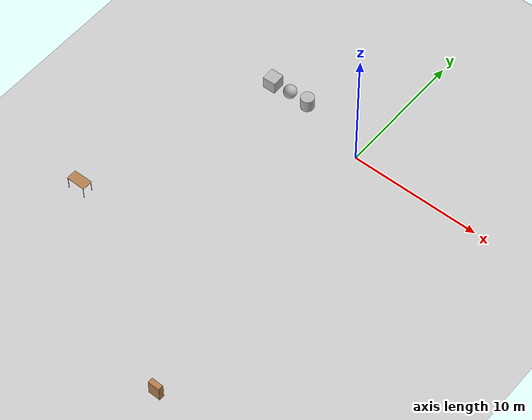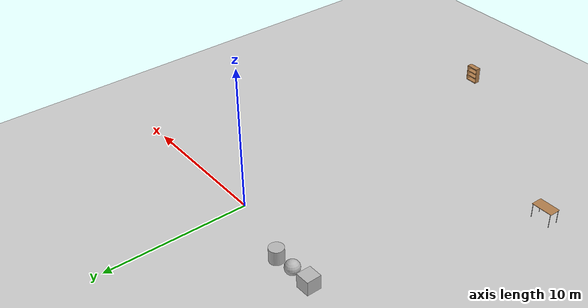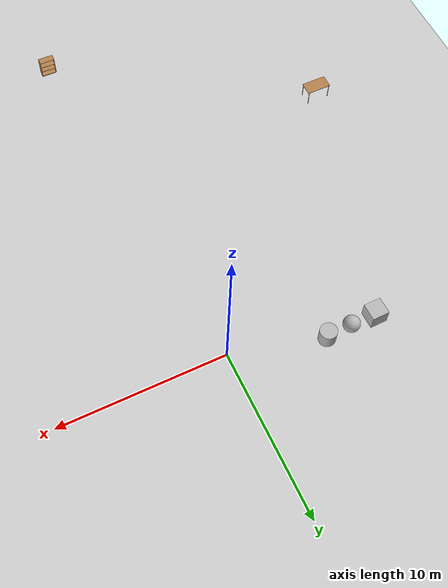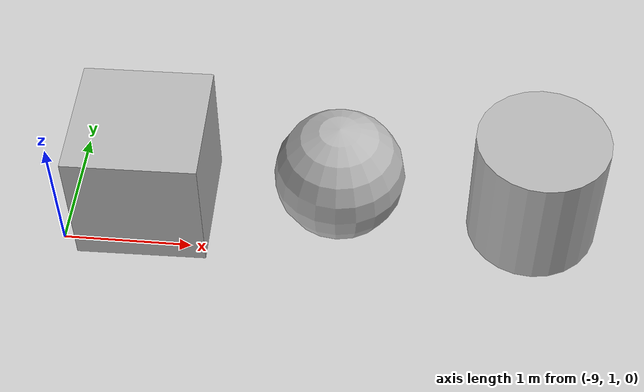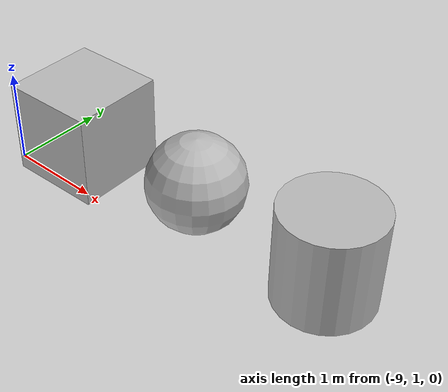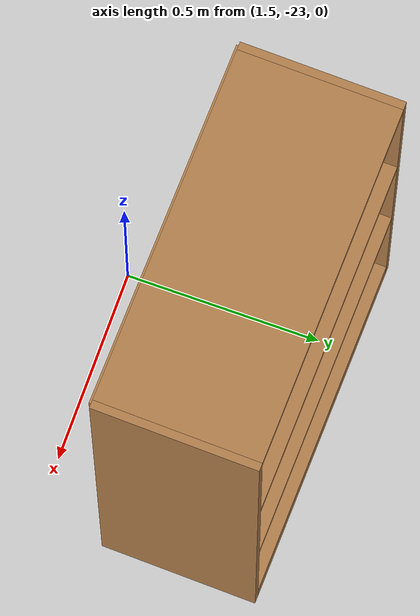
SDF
<sdf version="1.6">
 <world name="default">
  <light name="sun" type="directional">
   <pose>0 0 10 0 -0 0</pose>
   <diffuse>0.8 0.8 0.8 1</diffuse>
   <specular>0.2 0.2 0.2 1</specular>
   <attenuation>
    <range>1000</range>
    <constant>0.9</constant>
    <linear>0.01</linear>
    <quadratic>0.001</quadratic>
   </attenuation>
   <direction>-0.5 0.1 -0.9</direction>
  </light>
  <model name="ground_plane">
   <static>1</static>
   <link name="link">
    <collision name="collision">
     <geometry><plane><normal>0 0 1</normal><size>55 55</size></plane></geometry>
     <surface><friction><ode><mu>100</mu><mu2>50</mu2></ode></friction></surface>
    </collision>
    <visual name="visual">
     <cast_shadows>0</cast_shadows>
     <geometry><plane><normal>0 0 1</normal><size>55 55</size></plane></geometry>
     <material>
      <script>
       <uri>model://ground_plane/materials/scripts/my_ground_plane.material</uri>
       <name>MyGroundPlane/Image</name>
      </script>
     </material>
    </visual>
   </link>
  </model>
  <gravity>0 0 -9.8</gravity>
  <magnetic_field>6e-06 2.3e-05 -4.2e-05</magnetic_field>
  <atmosphere type="adiabatic"/>
  <physics name="default_physics" default="0" type="ode">
   <max_step_size>0.0005</max_step_size>
   <real_time_factor>0.30</real_time_factor>
   <real_time_update_rate>600</real_time_update_rate>
  </physics>
  <scene><ambient>0.4 0.4 0.4 1</ambient><background>0.7 0.7 0.7 1</background><shadows>1</shadows></scene>
  <audio><device>default</device></audio>
  <spherical_coordinates>
   <surface_model>EARTH_WGS84</surface_model>
   <latitude_deg>0</latitude_deg>
   <longitude_deg>0</longitude_deg>
   <elevation>0</elevation>
   <heading_deg>0</heading_deg>
  </spherical_coordinates>
  <model name="textured_shapes">
   <pose>-6.87967 1.40797 0.5 0 0 -1.5513</pose>
   <link name="box">
    <pose>0 -1.5 0 0 -0 0</pose>
    <collision name="collision"><geometry><box><size>1 1 1</size></box></geometry></collision>
    <visual name="visual">
     <geometry><box><size>1 1 1</size></box></geometry>
     <material>
      <script>
       <uri>model://textured_shapes/materials/scripts</uri>
       <uri>model://textured_shapes/materials/textures</uri>
       <name>TexturedShape/Squares</name>
      </script>
     </material>
    </visual>
    <inertial>
     <inertia><ixx>1</ixx><ixy>0</ixy><ixz>0</ixz><iyy>1</iyy><iyz>0</iyz><izz>1</izz></inertia>
     <mass>1</mass>
    </inertial>
   </link>
   <link name="sphere">
    <collision name="collision"><geometry><sphere><radius>0.5</radius></sphere></geometry></collision>
    <visual name="visual">
     <geometry><sphere><radius>0.5</radius></sphere></geometry>
     <material>
      <script>
       <uri>model://textured_shapes/materials/scripts</uri>
       <uri>model://textured_shapes/materials/textures</uri>
       <name>TexturedShape/Squares</name>
      </script>
     </material>
    </visual>
    <inertial>
     <inertia><ixx>1</ixx><ixy>0</ixy><ixz>0</ixz><iyy>1</iyy><iyz>0</iyz><izz>1</izz></inertia>
     <mass>1</mass>
    </inertial>
   </link>
   <link name="cylinder">
    <pose>0 1.5 0 0 -0 0</pose>
    <collision name="collision">
     <geometry><cylinder><radius>0.5</radius><length>1</length></cylinder></geometry>
    </collision>
    <visual name="visual">
     <geometry><cylinder><radius>0.5</radius><length>1</length></cylinder></geometry>
     <material>
      <script>
       <uri>model://textured_shapes/materials/scripts</uri>
       <uri>model://textured_shapes/materials/textures</uri>
       <name>TexturedShape/Squares</name>
      </script>
     </material>
    </visual>
    <inertial>
     <inertia><ixx>1</ixx><ixy>0</ixy><ixz>0</ixz><iyy>1</iyy><iyz>0</iyz><izz>1</izz></inertia>
     <mass>1</mass>
    </inertial>
   </link>
  </model>
  <model name="table">
   <static>1</static>
   <link name="link">
    <collision name="surface">
     <pose>0 0 1 0 -0 0</pose>
     <geometry><box><size>1.5 0.8 0.03</size></box></geometry>
     <surface><friction><ode><mu>0.6</mu><mu2>0.6</mu2></ode></friction></surface>
    </collision>
    <visual name="visual1">
     <pose>0 0 1 0 -0 0</pose>
     <geometry><box><size>1.5 0.8 0.03</size></box></geometry>
     <material>
      <script><uri>file://media/materials/scripts/gazebo.material</uri><name>Gazebo/Wood</name></script>
     </material>
    </visual>
    <collision name="front_left_leg">
     <pose>0.68 0.38 0.5 0 -0 0</pose>
     <geometry><cylinder><radius>0.02</radius><length>1</length></cylinder></geometry>
    </collision>
    <visual name="front_left_leg">
     <pose>0.68 0.38 0.5 0 -0 0</pose>
     <geometry><cylinder><radius>0.02</radius><length>1</length></cylinder></geometry>
     <material>
      <script><uri>file://media/materials/scripts/gazebo.material</uri><name>Gazebo/Grey</name></script>
     </material>
    </visual>
    <collision name="front_right_leg">
     <pose>0.68 -0.38 0.5 0 -0 0</pose>
     <geometry><cylinder><radius>0.02</radius><length>1</length></cylinder></geometry>
    </collision>
    <visual name="front_right_leg">
     <pose>0.68 -0.38 0.5 0 -0 0</pose>
     <geometry><cylinder><radius>0.02</radius><length>1</length></cylinder></geometry>
     <material>
      <script><uri>file://media/materials/scripts/gazebo.material</uri><name>Gazebo/Grey</name></script>
     </material>
    </visual>
    <collision name="back_right_leg">
     <pose>-0.68 -0.38 0.5 0 -0 0</pose>
     <geometry><cylinder><radius>0.02</radius><length>1</length></cylinder></geometry>
    </collision>
    <visual name="back_right_leg">
     <pose>-0.68 -0.38 0.5 0 -0 0</pose>
     <geometry><cylinder><radius>0.02</radius><length>1</length></cylinder></geometry>
     <material>
      <script><uri>file://media/materials/scripts/gazebo.material</uri><name>Gazebo/Grey</name></script>
     </material>
    </visual>
    <collision name="back_left_leg">
     <pose>-0.68 0.38 0.5 0 -0 0</pose>
     <geometry><cylinder><radius>0.02</radius><length>1</length></cylinder></geometry>
    </collision>
    <visual name="back_left_leg">
     <pose>-0.68 0.38 0.5 0 -0 0</pose>
     <geometry><cylinder><radius>0.02</radius><length>1</length></cylinder></geometry>
     <material>
      <script><uri>file://media/materials/scripts/gazebo.material</uri><name>Gazebo/Grey</name></script>
     </material>
    </visual>
   </link>
   <pose>-12.789 -13.7477 0 0 -0 0</pose>
  </model>
  <model name="bookshelf">
   <static>1</static>
   <link name="link">
    <inertial><mass>1</mass></inertial>
    <collision name="back">
     <pose>0 0.005 0.6 0 -0 0</pose>
     <geometry><box><size>0.9 0.01 1.2</size></box></geometry>
    </collision>
    <visual name="visual1">
     <pose>0 0.005 0.6 0 -0 0</pose>
     <geometry><box><size>0.9 0.01 1.2</size></box></geometry>
     <material>
      <script><uri>file://media/materials/scripts/gazebo.material</uri><name>Gazebo/Wood</name></script>
     </material>
    </visual>
    <collision name="left_side">
     <pose>0.45 -0.195 0.6 0 -0 0</pose>
     <geometry><box><size>0.02 0.4 1.2</size></box></geometry>
    </collision>
    <visual name="visual2">
     <pose>0.45 -0.195 0.6 0 -0 0</pose>
     <geometry><box><size>0.02 0.4 1.2</size></box></geometry>
     <material>
      <script><uri>file://media/materials/scripts/gazebo.material</uri><name>Gazebo/Wood</name></script>
     </material>
    </visual>
    <collision name="right_side">
     <pose>-0.45 -0.195 0.6 0 -0 0</pose>
     <geometry><box><size>0.02 0.4 1.2</size></box></geometry>
    </collision>
    <visual name="visual3">
     <pose>-0.45 -0.195 0.6 0 -0 0</pose>
     <geometry><box><size>0.02 0.4 1.2</size></box></geometry>
     <material>
      <script><uri>file://media/materials/scripts/gazebo.material</uri><name>Gazebo/Wood</name></script>
     </material>
    </visual>
    <collision name="bottom">
     <pose>0 -0.195 0.03 0 -0 0</pose>
     <geometry><box><size>0.88 0.4 0.06</size></box></geometry>
    </collision>
    <visual name="visual4">
     <pose>0 -0.195 0.03 0 -0 0</pose>
     <geometry><box><size>0.88 0.4 0.06</size></box></geometry>
     <material>
      <script><uri>file://media/materials/scripts/gazebo.material</uri><name>Gazebo/Wood</name></script>
     </material>
    </visual>
    <collision name="top">
     <pose>0 -0.195 1.19 0 -0 0</pose>
     <geometry><box><size>0.88 0.4 0.02</size></box></geometry>
    </collision>
    <visual name="visual5">
     <pose>0 -0.195 1.19 0 -0 0</pose>
     <geometry><box><size>0.88 0.4 0.02</size></box></geometry>
     <material>
      <script><uri>file://media/materials/scripts/gazebo.material</uri><name>Gazebo/Wood</name></script>
     </material>
    </visual>
    <collision name="low_shelf">
     <pose>0 -0.195 0.43 0 -0 0</pose>
     <geometry><box><size>0.88 0.4 0.02</size></box></geometry>
    </collision>
    <visual name="visual6">
     <pose>0 -0.195 0.43 0 -0 0</pose>
     <geometry><box><size>0.88 0.4 0.02</size></box></geometry>
     <material>
      <script><uri>file://media/materials/scripts/gazebo.material</uri><name>Gazebo/Wood</name></script>
     </material>
    </visual>
    <collision name="high_shelf">
     <pose>0 -0.195 0.8 0 -0 0</pose>
     <geometry><box><size>0.88 0.4 0.02</size></box></geometry>
    </collision>
    <visual name="visual7">
     <pose>0 -0.195 0.8 0 -0 0</pose>
     <geometry><box><size>0.88 0.4 0.02</size></box></geometry>
     <material>
      <script><uri>file://media/materials/scripts/gazebo.material</uri><name>Gazebo/Wood</name></script>
     </material>
    </visual>
   </link>
   <pose>1.71075 -22.8065 0 0 -0 3.11624</pose>
  </model>
 </world>
</sdf>
